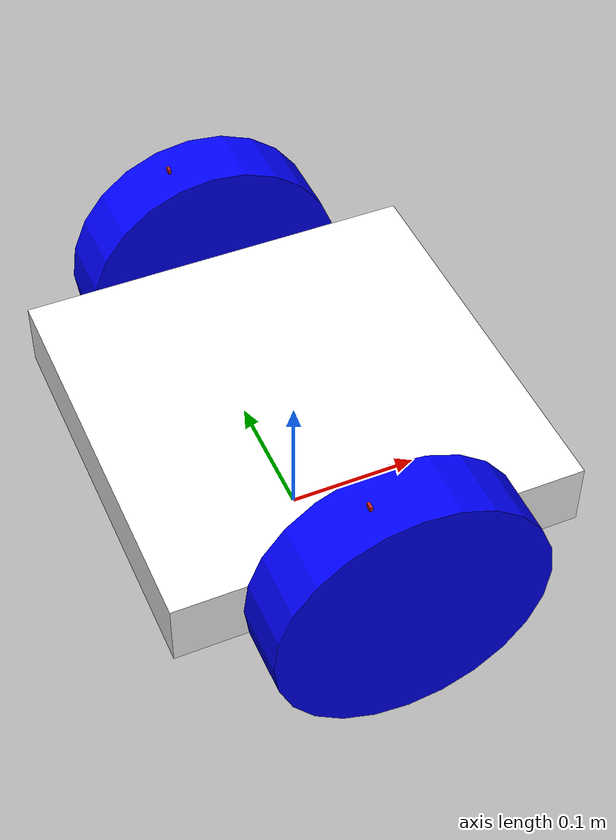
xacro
<?xml version="1.0"?>

<robot name="led_mr" xmlns:xacro="http://www.ros.org/wiki/xacro">
    <xacro:property name="wheel_r" value="0.1" />
    <xacro:property name="wheel_w" value="0.05" />
    <xacro:property name="wheel_s" value="0.35" />
    <xacro:property name="body_x" value="0.3" />
    <xacro:property name="body_y" value="0.3" />
    <xacro:property name="body_z" value="0.05" />

    <material name="BLUE">
        <color rgba="0.0 0.0 1.0 1.0"/>
    </material>
    <material name="WHITE">
        <color rgba="1.0 1.0 1.0 1.0"/>
    </material>

    <link name="body_footprint">
        <visual>
            <geometry>
                <box size="0.01 0.01 0.01"/>
            </geometry>
        </visual>
    </link>

    <link name="body">
        <collision>
            <geometry>
                <box size="${body_x} ${body_y} ${body_z}"/>
            </geometry>
        </collision>
        <visual>
            <geometry>
                <box size="${body_x} ${body_y} ${body_z}"/>
            </geometry>
            <material name="WHITE"/>
        </visual>
        <inertial>
            <origin xyz="0.0 0.0 0.0" rpy="0.0 0.0 0.0"/>
            <mass value="4.77"/>
            <inertia ixx="0.03975" ixy="0.0" ixz="0.0" iyy="0.07155" iyz="0.0" izz="0.03975"/>
        </inertial>
    </link>

    <link name="l_wheel">
        <visual>
            <geometry>
                <cylinder radius="${wheel_r}" length="${wheel_w}"/>
            </geometry>
            <material name="BLUE"/>
            <origin xyz="0.0 0.0 0.0" rpy="${pi/2} 0.0 0.0"/>
        </visual>
        <collision>
            <geometry>
                <cylinder radius="${wheel_r}" length="${wheel_w}"/>
            </geometry>
            <origin xyz="0.0 0.0 0.0" rpy="${pi/2} 0.0 0.0"/>
        </collision>
        <inertial>
            <origin xyz="0.0 0.0 0.0" rpy="${pi/2} 0.0 0.0"/>
            <mass value="1.665"/>
            <inertia ixx="0.008325" ixy="0.0" ixz="0.0" iyy="0.00555" iyz="0.0" izz="0.00555"/>
        </inertial>
    </link>

    <link name="r_wheel">
        <visual>
            <geometry>
                <cylinder radius="${wheel_r}" length="${wheel_w}"/>
            </geometry>
            <material name="BLUE"/>
            <origin xyz="0.0 0.0 0.0" rpy="${pi/2} 0.0 0.0"/>
        </visual>
        <collision>
            <geometry>
                <cylinder radius="${wheel_r}" length="${wheel_w}"/>
            </geometry>
            <origin xyz="0.0 0.0 0.0" rpy="${pi/2} 0.0 0.0"/>
        </collision>
        <inertial>
            <origin xyz="0.0 0.0 0.0" rpy="${pi/2} 0.0 0.0"/>
            <mass value="1.665"/>
            <inertia ixx="0.008325" ixy="0.0" ixz="0.0" iyy="0.0555" iyz="0.0" izz="0.0555"/>
        </inertial>
    </link>

    <link name="l_indic">
        <visual>
            <origin xyz="0.0 0.0 0.0"/>
            <geometry>
                <box size="0.002 0.005 ${wheel_r}"/>
            </geometry>
        </visual>
    </link>

    <link name="r_indic">
        <visual>
            <origin xyz="0.0 0.0 0.0"/>
            <geometry>
                <box size="0.002 0.005 ${wheel_r}"/>
            </geometry>
        </visual>
    </link>

    <joint name="body_to_footprint" type="fixed">
        <origin xyz="0.0 0.0 ${wheel_r}"/>
        <parent link="body_footprint"/>
        <child link="body"/>
    </joint>

    <joint name="l_wheel_indic" type="fixed">
        <origin xyz="-${wheel_w/2} 0.0 ${wheel_r/2}"/>
        <parent link="l_wheel"/>
        <child link="l_indic"/>
    </joint>

    <joint name="r_wheel_indic" type="fixed">
        <origin xyz="-${wheel_w/2} 0.0 ${wheel_r/2}"/>
        <parent link="r_wheel"/>
        <child link="r_indic"/>
    </joint>

    <joint name="body_to_left_wheel" type="continuous">
        <origin xyz="0.0 -${wheel_s/2} 0.0" rpy="0.0 0.0 0.0"/>
        <parent link="body"/>
        <child link="l_wheel"/>
        <axis xyz="0.0 1.0 0.0"/>
        <hardwareInterface>hardware_interface/VelocityJointInterface</hardwareInterface>
    </joint>

    <joint name="body_to_right_wheel" type="continuous">
        <origin xyz="0.0 ${wheel_s/2} 0.0" rpy="0.0 0.0 0.0"/>
        <parent link="body"/>
        <child link="r_wheel"/>
        <axis xyz="0.0 1.0 0.0"/>
        <hardwareInterface>hardware_interface/VelocityJointInterface</hardwareInterface>
    </joint>

    <transmission name="l_tran">
        <type>transmission_interface/SimpleTransmission</type>
        <joint name="body_to_left_wheel">
            <hardwareInterface>hardware_interface/VelocityJointInterface</hardwareInterface>
        </joint>
        <actuator name="l_motor">
            <hardwareInterface>hardware_interface/VelocityJointInterface</hardwareInterface>
            <mechanicalReduction>1</mechanicalReduction>
        </actuator>
    </transmission>

    <transmission name="r_tran">
        <type>transmission_interface/SimpleTransmission</type>
        <joint name="body_to_right_wheel">
            <hardwareInterface>hardware_interface/VelocityJointInterface</hardwareInterface>
        </joint>
        <actuator name="r_motor">
            <hardwareInterface>hardware_interface/VelocityJointInterface</hardwareInterface>
            <mechanicalReduction>1</mechanicalReduction>
        </actuator>
    </transmission>

    <!-- ros_control plugin -->
    <gazebo>
        <plugin name="gazebo_ros_control" filename="libgazebo_ros_control.so">
        <robotNamespace>/led_mr</robotNamespace>
        </plugin>
    </gazebo>

    <!-- Link1 -->
    <gazebo reference="body">
        <material>Gazebo/Orange</material>
    </gazebo>

    <!-- Link2 -->
    <gazebo reference="l_wheel">
        <mu1>0.2</mu1>
        <mu2>0.2</mu2>
        <kp>1000000.0</kp>
        <kd>100.0</kd>
        <material>Gazebo/Blue</material>
    </gazebo>

    <!-- Link3 -->
    <gazebo reference="r_wheel">
        <mu1>0.2</mu1>
        <mu2>0.2</mu2>
        <kp>1000000.0</kp>
        <kd>100.0</kd>
        <material>Gazebo/Blue</material>
    </gazebo>

    <gazebo reference="l_indic">
        <material>Gazebo/Red</material>
    </gazebo>

    <gazebo reference="r_indic">
        <material>Gazebo/Red</material>
    </gazebo>
</robot>
